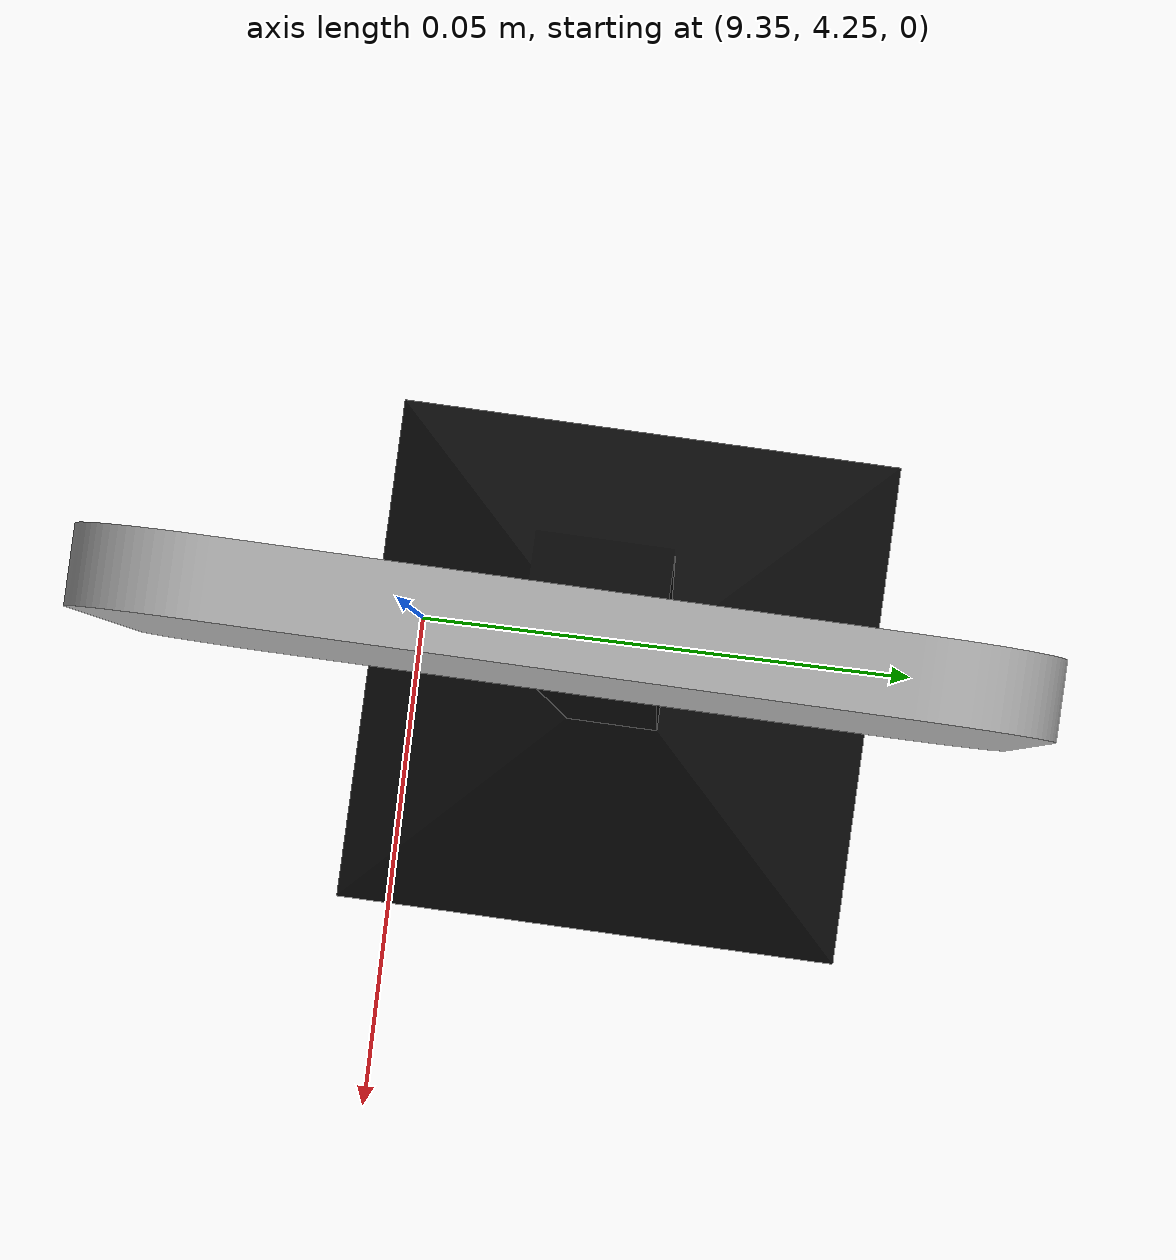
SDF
<sdf version="1.7">
 <world name="bfmc_official">
  <model name="crosswalk_sign_0">
   <static>1</static>
   <link name="sign_leg">
    <inertial>
     <mass>0.5</mass>
     <inertia>
      <ixx>0.166667</ixx>
      <ixy>0</ixy>
      <ixz>0</ixz>
      <iyy>0.166667</iyy>
      <iyz>0</iyz>
      <izz>0.166667</izz>
     </inertia>
     <pose>0 0 -0.078998 0 -0 0</pose>
    </inertial>
    <pose>0.002193 -0.000682 -0.07606 0 -0 0</pose>
    <self_collide>1</self_collide>
    <enable_wind>1</enable_wind>
    <visual name="visual">
     <geometry><mesh><uri>model://subassembly/meshes/sign_leg.dae</uri><scale>1 1 1</scale></mesh></geometry>
    </visual>
    <collision name="collision">
     <geometry><mesh><uri>model://subassembly/meshes/sign_leg.dae</uri><scale>1 1 1</scale></mesh></geometry>
     <surface>
      <friction>
       <ode><mu>0.46</mu><mu2>1</mu2><fdir1>0 0 0</fdir1><slip1>0</slip1><slip2>0</slip2></ode>
       <torsional>
        <coefficient>1</coefficient>
        <patch_radius>0</patch_radius>
        <surface_radius>0</surface_radius>
        <use_patch_radius>1</use_patch_radius>
        <ode><slip>0</slip></ode>
       </torsional>
      </friction>
      <bounce><restitution_coefficient>0</restitution_coefficient><threshold>1e+06</threshold></bounce>
      <contact>
       <collide_without_contact>0</collide_without_contact>
       <collide_without_contact_bitmask>1</collide_without_contact_bitmask>
       <collide_bitmask>1</collide_bitmask>
       <ode>
        <soft_cfm>0</soft_cfm>
        <soft_erp>0.2</soft_erp>
        <kp>1e+13</kp>
        <kd>1</kd>
        <max_vel>0.01</max_vel>
        <min_depth>0</min_depth>
       </ode>
       <bullet>
        <split_impulse>1</split_impulse>
        <split_impulse_penetration_threshold>-0.01</split_impulse_penetration_threshold>
        <soft_cfm>0</soft_cfm>
        <soft_erp>0.2</soft_erp>
        <kp>1e+13</kp>
        <kd>1</kd>
       </bullet>
      </contact>
     </surface>
    </collision>
   </link>
   <link name="rectangular_support">
    <inertial>
     <mass>0.022</mass>
     <inertia>
      <ixx>0.166667</ixx>
      <ixy>0</ixy>
      <ixz>0</ixz>
      <iyy>0.166667</iyy>
      <iyz>0</iyz>
      <izz>0.166667</izz>
     </inertia>
    </inertial>
    <pose>-0 0.000682 0.09894 0 -0 3.14159</pose>
    <self_collide>1</self_collide>
    <enable_wind>1</enable_wind>
    <visual name="visual">
     <geometry>
      <mesh><uri>model://crosswalk_sign/meshes/pedestrian_sign.dae</uri><scale>10 10 10</scale></mesh>
     </geometry>
     <material>
      <lighting>1</lighting>
      <script>
       <uri>model://crosswalk_sign/materials/scripts</uri>
       <uri>model://crosswalk_sign/materials/textures</uri>
       <name>PEDESTRIAN_SIGN</name>
      </script>
      <shader type="vertex"><normal_map>__default__</normal_map></shader>
      <ambient>0.3 0.3 0.3 1</ambient>
      <diffuse>0.7 0.7 0.7 1</diffuse>
      <specular>0.01 0.01 0.01 1</specular>
      <emissive>0 0 0 1</emissive>
     </material>
    </visual>
    <collision name="collision">
     <geometry>
      <mesh><uri>model://crosswalk_sign/meshes/pedestrian_sign.dae</uri><scale>10 10 10</scale></mesh>
     </geometry>
     <surface>
      <friction>
       <ode><mu>0.46</mu><mu2>1</mu2><fdir1>0 0 0</fdir1><slip1>0</slip1><slip2>0</slip2></ode>
       <torsional>
        <coefficient>1</coefficient>
        <patch_radius>0</patch_radius>
        <surface_radius>0</surface_radius>
        <use_patch_radius>1</use_patch_radius>
        <ode><slip>0</slip></ode>
       </torsional>
      </friction>
      <bounce><restitution_coefficient>0</restitution_coefficient><threshold>1e+06</threshold></bounce>
      <contact>
       <collide_without_contact>0</collide_without_contact>
       <collide_without_contact_bitmask>1</collide_without_contact_bitmask>
       <collide_bitmask>1</collide_bitmask>
       <ode>
        <soft_cfm>0</soft_cfm>
        <soft_erp>0.2</soft_erp>
        <kp>1e+13</kp>
        <kd>1</kd>
        <max_vel>0.01</max_vel>
        <min_depth>0</min_depth>
       </ode>
       <bullet>
        <split_impulse>1</split_impulse>
        <split_impulse_penetration_threshold>-0.01</split_impulse_penetration_threshold>
        <soft_cfm>0</soft_cfm>
        <soft_erp>0.2</soft_erp>
        <kp>1e+13</kp>
        <kd>1</kd>
       </bullet>
      </contact>
     </surface>
    </collision>
   </link>
   <joint name="support_to_leg_joint" type="fixed">
    <parent>link_0</parent>
    <child>link_1</child>
    <physics>
     <ode><limit><cfm>0</cfm><erp>0.2</erp></limit><suspension><cfm>0</cfm><erp>0.2</erp></suspension></ode>
    </physics>
   </joint>
   <static>1</static>
   <pose>9.35645 4.27003 0.083977 0 -0 3.12651</pose>
  </model>
 </world>
</sdf>
